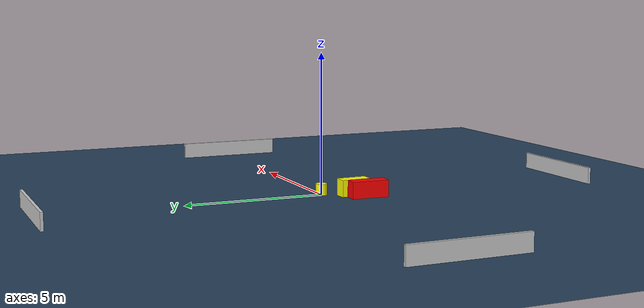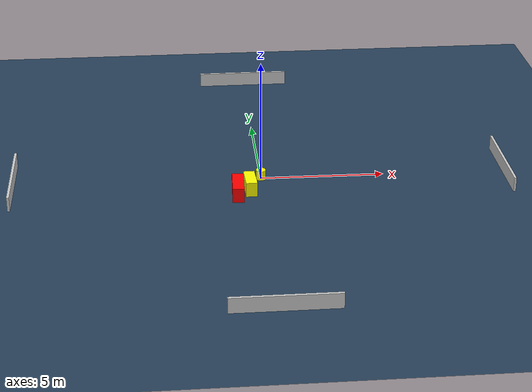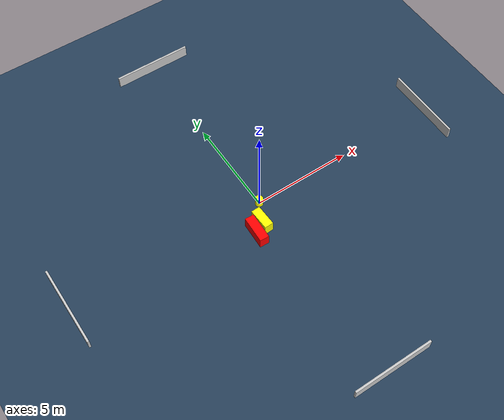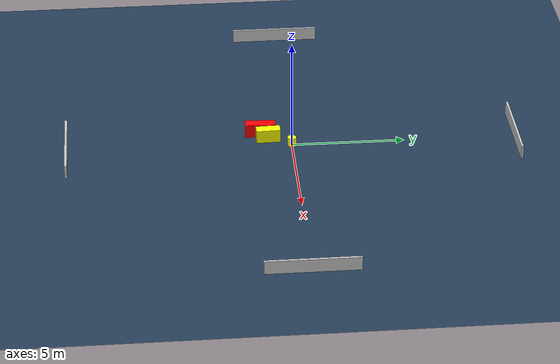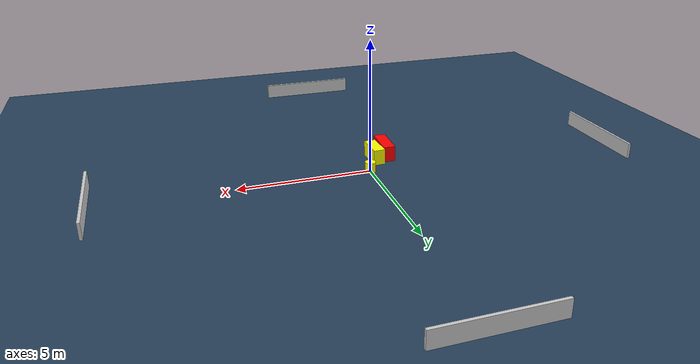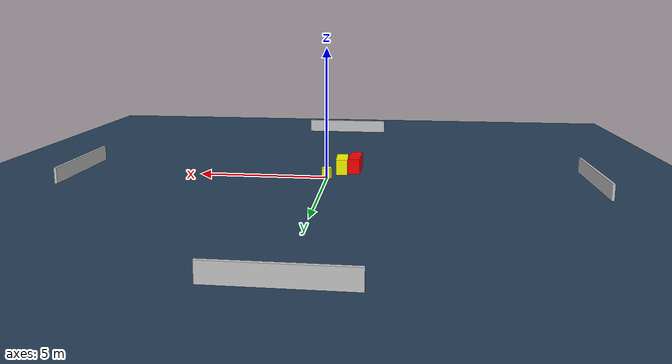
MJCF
<?xml version="1.0" ?>
<mujoco model="generated_environment">
  <option timestep="0.01" integrator="RK4" cone="elliptic"/>
  <default>
    <geom density="1"/>
  </default>
  <asset>
    <texture builtin="gradient" height="3072" name="skybox" rgb1="0.3 0.5 0.7" rgb2="0 0 0" type="skybox" width="512"/>
    <texture builtin="checker" height="300" name="groundplane" rgb1="0.2 0.3 0.4" rgb2="0.1 0.2 0.3" type="2d" width="300"/>
    <material name="groundplane" reflectance="0.2" texrepeat="5 5" texture="groundplane"/>
  </asset>
  <worldbody>
    <light dir="0 0 -1" directional="true" pos="0 0 1.5"/>
    <geom condim="3" friction="0.5 0.005 0.001" material="groundplane" name="floor" pos="0 0 0" size="0 0 0.05" type="plane"/>
    <body name="walls">
      <geom name="wall_1" condim="4" pos="-10.0 0.0 0.3" rgba="0.800000011920929 0.800000011920929 0.800000011920929 1.0" size="0.05 2.0 0.3" type="box"/>
      <geom name="wall_2" condim="4" pos="10.0 0.0 0.3" rgba="0.800000011920929 0.800000011920929 0.800000011920929 1.0" size="0.05 2.0 0.3" type="box"/>
      <geom name="wall_3" condim="4" pos="0.0 -10.0 0.3" rgba="0.800000011920929 0.800000011920929 0.800000011920929 1.0" size="2.0 0.05 0.3" type="box"/>
      <geom name="wall_4" condim="4" pos="0.0 10.0 0.3" rgba="0.800000011920929 0.800000011920929 0.800000011920929 1.0" size="2.0 0.05 0.3" type="box"/>
    </body>
    <body name="robot">
      <joint name="joint_x" type="slide" pos="0 0 0" axis="1 0 0"/>
      <joint name="joint_y" type="slide" pos="0 0 0" axis="0 1 0"/>
      <geom name="robot" type="cylinder" pos="0.0 0.0 0.2" size="0.2 0.2 0.0" mass="5.0" friction="1.0 0.005 0.0001" condim="4" rgba="1.0 1.0 0.0 1.0"/>
    </body>
    <body name="obstacle_1_movable">
      <geom name="obstacle_1_movable" condim="4" pos="-0.5120386763913608 -1.020110540624004 0.3" euler="0 0 2.3153187271120412" friction="0.0 0.005 0.001" rgba="1.0 1.0 0.0 1.0" size="0.22441229293172468 0.5387755588562448 0.3" type="box" mass="0.1"/>
      <joint type="free"/>
    </body>
    <body name="obstacle_2_static">
      <geom name="obstacle_2_static" condim="4" pos="-1.0221408989325995 -1.3404173720105619 0.3" euler="0 0 177.68485629394118" friction="0.0 0.005 0.001" rgba="1.0 0.0 0.0 1.0" size="0.23137907959917473 0.6761805420972336 0.3" type="box"/>
    </body>
  </worldbody>
  <actuator>
    <motor name="actuator_x" joint="joint_x" gear="1" ctrlrange="-1 1"/>
    <motor name="actuator_y" joint="joint_y" gear="1" ctrlrange="-1 1"/>
  </actuator>
</mujoco>
